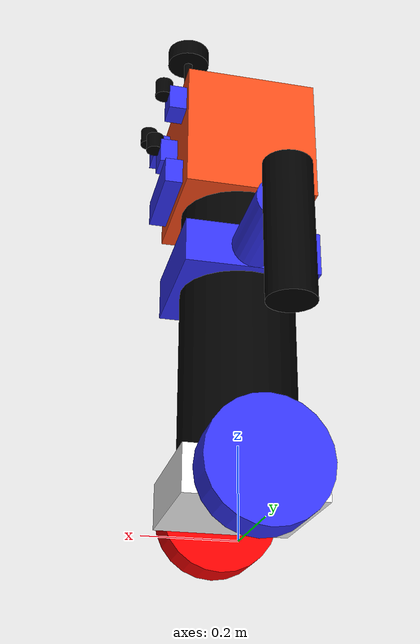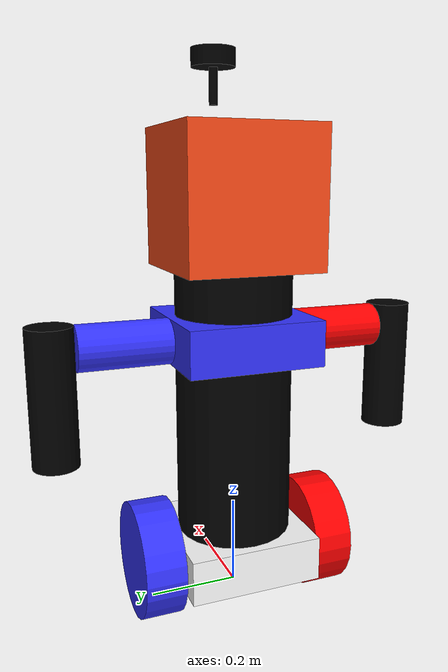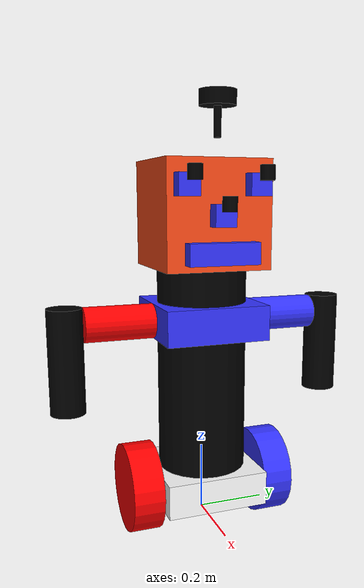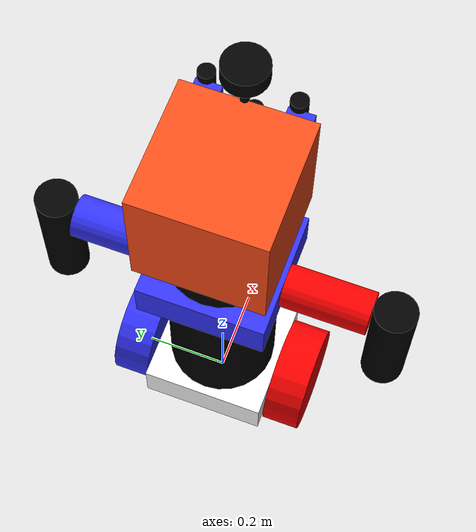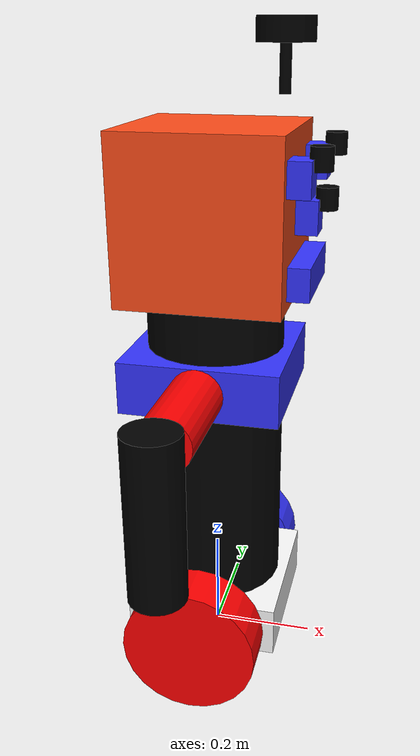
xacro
<?xml version="1.0"?>

<robot xmlns:xacro="http://www.ros.org/wiki/xacro" name="robot">

    <xacro:include filename="robot_core.xacro" />
    <xacro:include filename="lidar.xacro" />
    <xacro:include filename="camera.xacro" />

</robot>

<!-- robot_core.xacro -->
<robot name="ros_urdf" xmlns:xacro="http://www.ros.org/wiki/xacro" >

    <xacro:include filename="inertial_macros.xacro"/>

    <xacro:property name="head_length_x" value="0.3"/>
    <xacro:property name="head_width" value="0.3"/>
    <xacro:property name="head_height" value="0.3"/>
    <xacro:property name="head_mass" value="1.0"/>

    <xacro:property name="head_x" value="0.0"/>
    <xacro:property name="head_y" value="0.0"/>
    <xacro:property name="head_z" value="0.9"/>

    <xacro:property name="wheel_radius" value="0.13"/>
    <xacro:property name="wheel_thickness" value="0.09"/>
    <xacro:property name="wheel_mass" value="0.05"/>
    <xacro:property name="wheel_offset_x" value="0.226"/>
    <xacro:property name="wheel_offset_y" value="0.1485"/>
    <xacro:property name="wheel_offset_z" value="0.01"/>

    <xacro:property name="arm_thickness" value="0.3"/>
    <xacro:property name="arm_radius" value="0.05"/>

    <material name="white">
        <color rgba="1 1 1 1" />
    </material>

    <material name="orange">
        <color rgba="1 0.3 0.1 1"/>
    </material>

    <material name="blue">
        <color rgba="0.2 0.2 1 1"/>
    </material>

    <material name="black">
        <color rgba="0 0 0 1"/>
    </material>

    <material name="red">
        <color rgba="1 0 0 1"/>
    </material>

    <!-- start -->
    <!-- 머리  -->
    <link name="base_link">
        <visual>
            <origin xyz="${head_x} ${head_y} ${head_z}"/>

            <geometry>
                <box size="${head_length_x} ${head_width} ${head_height}"/>
            </geometry>

            <material name="orange"/>
        </visual>

        <collision>
            <origin xyz="${head_x} ${head_y} ${head_z}"/>
            <geometry>
                <box size="${head_length_x} ${head_width} ${head_height}"/>
            </geometry>
        </collision>

        <xacro:inertial_box mass="0.5" x="${head_length_x}" y="${head_width}" z="${head_height}">
            <origin xyz="${head_x} ${head_y} ${head_z}" rpy="0 0 0"/>
        </xacro:inertial_box>
    </link>

    <joint name="head_joint" type="fixed">
        <parent link="base_link"/>
        <child link="base_link_1"/>
        <origin xyz="${head_x} ${head_y} 0"/>
    </joint>

    <!-- base 1    가슴    -->
    <link name="base_link_1">
        <visual>
            <origin xyz="0 0 0.6"/>

            <geometry>
                <box size="0.3 0.3 0.1"/>
            </geometry>

            <material name="blue"/>
        </visual>

        <collision>
            <origin xyz="0 0 0.6"/>
            <geometry>
                <box size="0.3 0.3 0.1"/>
            </geometry>
        </collision>

        <xacro:inertial_box mass="0.5" x="0.3" y="0.3" z="0.1">
            <origin xyz="0 0 0.6" rpy="0 0 0"/>
        </xacro:inertial_box>
    </link>

    <!-- left arm    -->
    <joint name="left_arm_joint" type="continuous">
        <parent link="base_link_1"/>
        <child link="left_arm"/>
        <origin xyz="0 0.2 0.6" rpy="-${pi/2} 0 0" />
        <axis xyz="0 0 1"/>
    </joint>

    <link name="left_arm">
        <visual>
            <geometry>
                <cylinder radius="${arm_radius}" length="${arm_thickness}"/>
            </geometry>
            <material name="blue"/>
        </visual>

        <collision>
            <geometry>
                <sphere radius="${arm_radius}"/>
            </geometry>
        </collision>

        <xacro:inertial_cylinder mass="${wheel_mass}" length="${arm_thickness}" radius="${arm_radius}">
            <origin xyz="0 0 0" rpy="0 0 0"/>
        </xacro:inertial_cylinder>
    </link>

    <joint name="left_arm2_joint" type="continuous">
        <parent link="left_arm"/>
        <child link="left_arm2"/>
        <origin xyz="0 0.1 0.2" rpy="-${pi/2} 0 0" />
        <axis xyz="0 0 1"/>
    </joint>

    <link name="left_arm2">
        <visual>
            <geometry>
                <cylinder radius="${arm_radius}" length="${arm_thickness}"/>
            </geometry>
            <material name="black"/>
        </visual>

        <collision>
            <geometry>
                <sphere radius="${arm_radius}"/>
            </geometry>
        </collision>

        <xacro:inertial_cylinder mass="${wheel_mass}" length="${arm_thickness}" radius="${arm_radius}">
            <origin xyz="0 0 0" rpy="0 0 0"/>
        </xacro:inertial_cylinder>
    </link>

    <!-- right arm    -->
    <joint name="right_arm_joint" type="continuous">
        <parent link="base_link_1"/>
        <child link="right_arm"/>
        <origin xyz="0 -0.2 0.6" rpy="-${pi/2} 0 0" />
        <axis xyz="0 0 1"/>
    </joint>

    <link name="right_arm">
        <visual>
            <geometry>
                <cylinder radius="${arm_radius}" length="${arm_thickness}"/>
            </geometry>
            <material name="red"/>
        </visual>

        <collision>
            <geometry>
                <sphere radius="${arm_radius}"/>
            </geometry>
        </collision>

        <xacro:inertial_cylinder mass="${wheel_mass}" length="${arm_thickness}" radius="${arm_radius}">
            <origin xyz="0 0 0" rpy="0 0 0"/>
        </xacro:inertial_cylinder>
    </link>

    <joint name="right_arm2_joint" type="continuous">
        <parent link="right_arm"/>
        <child link="right_arm2"/>
        <origin xyz="0 0.1 -0.2" rpy="-${pi/2} 0 0" />
        <axis xyz="0 0 1"/>
    </joint>

    <link name="right_arm2">
        <visual>
            <geometry>
                <cylinder radius="${arm_radius}" length="${arm_thickness}"/>
            </geometry>
            <material name="black"/>
        </visual>

        <collision>
            <geometry>
                <sphere radius="${arm_radius}"/>
            </geometry>
        </collision>

        <xacro:inertial_cylinder mass="${wheel_mass}" length="${arm_thickness}" radius="${arm_radius}">
            <origin xyz="0 0 0" rpy="0 0 0"/>
        </xacro:inertial_cylinder>
    </link>

    <!-- base 2    배    -->
    <joint name="base2_joint" type="fixed">
        <parent link="base_link_1"/>
        <child link="base_link_2"/>
        <origin xyz="${head_x} ${head_y} 0"/>
    </joint>

    <link name="base_link_2">
        <visual>
            <origin xyz="0 0 0.5"/>

            <geometry>
                <cylinder radius="${wheel_radius}" length="0.7"/>

            </geometry>

            <material name="black"/>
        </visual>

        <collision>
            <origin xyz="0 0 0.5"/>
            <geometry>
                <sphere radius="${wheel_radius}"/>
            </geometry>
        </collision>

        <xacro:inertial_cylinder mass="${wheel_mass}" length="0.7" radius="${wheel_radius}">
            <origin xyz="0 0 0.5" rpy="0 0 0"/>
        </xacro:inertial_cylinder>

    </link>

    <!-- base 2    배    -->
    <joint name="bottom_joint" type="fixed">
        <parent link="base_link_2"/>
        <child link="bottom"/>
        <origin xyz="${head_x} ${head_y} 0"/>
    </joint>

    <link name="bottom">
        <visual>
            <origin xyz="0 0 0.1"/>

            <geometry>
                <box size="0.3 0.3 0.1"/>
            </geometry>

            <material name="white"/>
        </visual>

        <collision>
            <origin xyz="0 0 0.1"/>
            <geometry>
                <box size="0.3 0.3 0.1"/>
            </geometry>
        </collision>

        <xacro:inertial_box mass="0.5" x="0.3" y="0.3" z="0.1">
            <origin xyz="0 0 0.1" rpy="0 0 0"/>
        </xacro:inertial_box>
    </link>

    <!-- left_wheel    -->
    <joint name="left_wheel_joint" type="continuous">
        <parent link="bottom"/>
        <child link="left_wheel"/>
        <origin xyz="0 0.2 0.1" rpy="-${pi/2} 0 0" />
        <axis xyz="0 0 1"/>
    </joint>

    <link name="left_wheel">
        <visual>
            <geometry>
                <cylinder radius="${wheel_radius}" length="${wheel_thickness}"/>
            </geometry>
            <material name="blue"/>
        </visual>

        <collision>
            <geometry>
                <sphere radius="${wheel_radius}"/>
            </geometry>
        </collision>

        <xacro:inertial_cylinder mass="${wheel_mass}" length="${wheel_thickness}" radius="${wheel_radius}">
            <origin xyz="0 0 0" rpy="0 0 0"/>
        </xacro:inertial_cylinder>
    </link>

    <!-- right_wheel    -->
    <joint name="right_wheel_joint" type="continuous">
        <parent link="bottom"/>
        <child link="right_wheel"/>
        <origin xyz="0 -0.2 0.1" rpy="-${pi/2} 0 0" />
        <axis xyz="0 0 1"/>
    </joint>

    <link name="right_wheel">
        <visual>
            <geometry>
                <cylinder radius="${wheel_radius}" length="${wheel_thickness}"/>
            </geometry>
            <material name="red"/>
        </visual>

        <collision>
            <geometry>
                <sphere radius="${wheel_radius}"/>
            </geometry>
        </collision>

        <xacro:inertial_cylinder mass="${wheel_mass}" length="${wheel_thickness}" radius="${wheel_radius}">
            <origin xyz="0 0 0" rpy="0 0 0"/>
        </xacro:inertial_cylinder>
    </link>

</robot>

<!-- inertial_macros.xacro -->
<robot xmlns:xacro="http://www.ros.org/wiki/xacro" >

    <xacro:macro name="inertial_sphere" params="mass radius *origin">
        <inertial>
            <xacro:insert_block name="origin"/>
            <mass value="${mass}" />
            <inertia ixx="${(2/5) * mass * (radius*radius)}" ixy="0.0" ixz="0.0"
                iyy="${(2/5) * mass * (radius*radius)}" iyz="0.0"
                izz="${(2/5) * mass * (radius*radius)}" />
        </inertial>
    </xacro:macro>

    <xacro:macro name="inertial_box" params="mass x y z *origin">
        <inertial>
            <xacro:insert_block name="origin"/>
            <mass value="${mass}" />
            <inertia ixx="${(1/12) * mass * (y*y+z*z)}" ixy="0.0" ixz="0.0"
                iyy="${(1/12) * mass * (x*x+z*z)}" iyz="0.0"
                izz="${(1/12) * mass * (x*x+y*y)}" />
        </inertial>
    </xacro:macro>

    <xacro:macro name="inertial_cylinder" params="mass length radius *origin">
        <inertial>
            <xacro:insert_block name="origin"/>
            <mass value="${mass}" />
            <inertia ixx="${(1/12) * mass * (3*radius*radius + length*length)}" ixy="0.0" ixz="0.0"
                iyy="${(1/12) * mass * (3*radius*radius + length*length)}" iyz="0.0"
                izz="${(1/2) * mass * (radius*radius)}" />
        </inertial>
    </xacro:macro>

</robot>

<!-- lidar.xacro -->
<robot xmlns:xacro="http://www.ros.org/wiki/xacro" >
    <joint name="laser_joint" type="fixed">
        <parent link="base_link"/>
        <child link="laser_frame"/>
        <origin xyz="0.122 0 1.2" rpy="0 0 0"/>
    </joint>
    <link name="laser_frame">
        <visual>
            <geometry>
                <cylinder radius="0.05" length="0.04"/>
            </geometry>
            <material name="black"/>
        </visual>
        <visual>
            <origin xyz="0 0 -0.05"/>
            <geometry>
                <cylinder radius="0.01" length="0.1"/>
            </geometry>
            <material name="black"/>
        </visual>
        <collision>
            <geometry>
                <cylinder radius="0.05" length="0.04"/>
            </geometry>
        </collision>
        <xacro:inertial_cylinder mass="0.1" length="0.04" radius="0.05">
            <origin xyz="0 0 0" rpy="0 0 0"/>
        </xacro:inertial_cylinder>
    </link>

    <gazebo reference="laser_frame">

        <material>Gazebo/Black</material>

        <sensor name="laser" type="ray">
            <pose> 0 0 0 0 0 0 </pose>
            <update_rate>10</update_rate>
            <visualize>true</visualize>
            <ray>
                <scan>
                    <horizontal>
                        <samples>360</samples>
                        <min_angle>-3.14</min_angle>
                        <max_angle>3.14</max_angle>
                    </horizontal>
                </scan>
                <range>
                    <min>0.3</min>
                    <max>12</max>
                </range>
            </ray>
            <plugin name="laser_controller" filename="libgazebo_ros_ray_sensor.so">
                <ros>
                    <argument>~/out:=scan</argument>
                </ros>
                <output_type>sensor_msgs/LaserScan</output_type>
                <frame_name>laser_frame</frame_name>
            </plugin>
        </sensor>
    </gazebo>
</robot>

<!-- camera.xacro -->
<robot xmlns:xacro="http://www.ros.org/wiki/xacro" >
    <joint name="camera_joint" type="fixed">
        <parent link="base_link"/>
        <child link="camera_link"/>
        <origin xyz="0.15 -0.1 0.98" rpy="0 0 0"/>
    </joint>

    <link name="camera_link">
        <visual>
            <geometry>
                <box size="0.08 0.06 0.06"/>
            </geometry>
            <material name="blue"/>
        </visual>

        <visual>
            <origin xyz="0.05 0.01 0.03"/>
            <geometry>
                <cylinder radius="0.02" length="0.04"/>
            </geometry>
            <material name="black"/>
        </visual>
    </link>

    <joint name="camera_joint2" type="fixed">
        <parent link="base_link"/>
        <child link="camera_link2"/>
        <origin xyz="0.15 0.1 0.98" rpy="0 0 0"/>
    </joint>

    <link name="camera_link2">
        <visual>
            <geometry>
                <box size="-0.08 0.06 0.06"/>
            </geometry>
            <material name="blue"/>
        </visual>

        <visual>
            <origin xyz="0.05 0.01 0.03"/>
            <geometry>
                <cylinder radius="0.02" length="0.04"/>
            </geometry>
            <material name="black"/>
        </visual>
    </link>

    <joint name="camera_joint3" type="fixed">
        <parent link="base_link"/>
        <child link="camera_link3"/>
        <origin xyz="0.15 0 0.9" rpy="0 0 0"/>
    </joint>

    <link name="camera_link3">
        <visual>
            <geometry>
                <box size="-0.08 0.06 0.06"/>
            </geometry>
            <material name="blue"/>
        </visual>

        <visual>
            <origin xyz="0.05 0.005 0.03"/>
            <geometry>
                <cylinder radius="0.02" length="0.04"/>
            </geometry>
            <material name="black"/>
        </visual>
    </link>

    <joint name="camera_joint4" type="fixed">
        <parent link="base_link"/>
        <child link="camera_link4"/>
        <origin xyz="0.15 0 0.8" rpy="0 0 0"/>
    </joint>

    <link name="camera_link4">
        <visual>
            <geometry>
                <box size="-0.08 0.2 0.06"/>
            </geometry>
            <material name="blue"/>
        </visual>
    </link>

    <joint name="camera_optical_joint" type="fixed">
        <parent link="camera_link"/>
        <child link="camera_link_optical"/>
        <origin xyz="0 0 0" rpy="${-pi/2} 0 ${-pi/2}"/>
    </joint>

    <link name="camera_link_optical"></link>

    <gazebo reference="camera_link">
        <material>Gazebo/Black</material>
        <sensor name="camera" type="camera">
            <pose> 0 0 0 0 0 0 </pose>
            <visualize>true</visualize>
            <update_rate>10</update_rate>
            <camera>
                <horizontal_fov>1.089</horizontal_fov>
                <image>
                    <format>R8G8B8</format>
                    <width>640</width>
                    <height>480</height>
                </image>
                <clip>
                    <near>0.05</near>
                    <far>8.0</far>
                </clip>
            </camera>
            <plugin name="camera_controller" filename="libgazebo_ros_camera.so">
                <frame_name>camera_link_optical</frame_name>
            </plugin>
        </sensor>
    </gazebo>
</robot>
